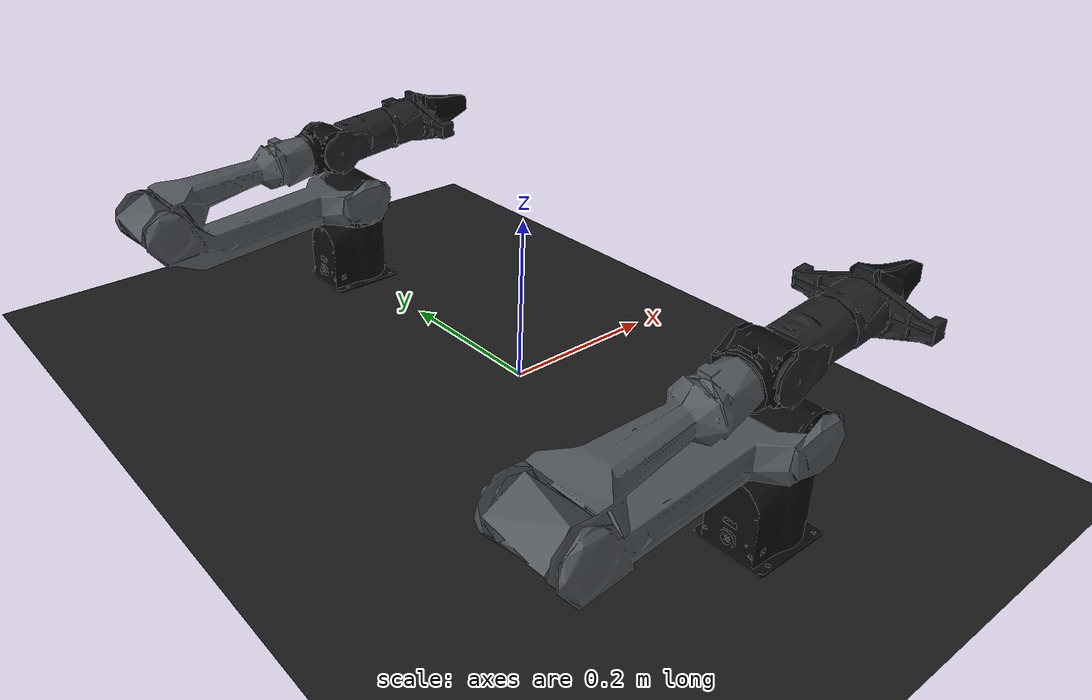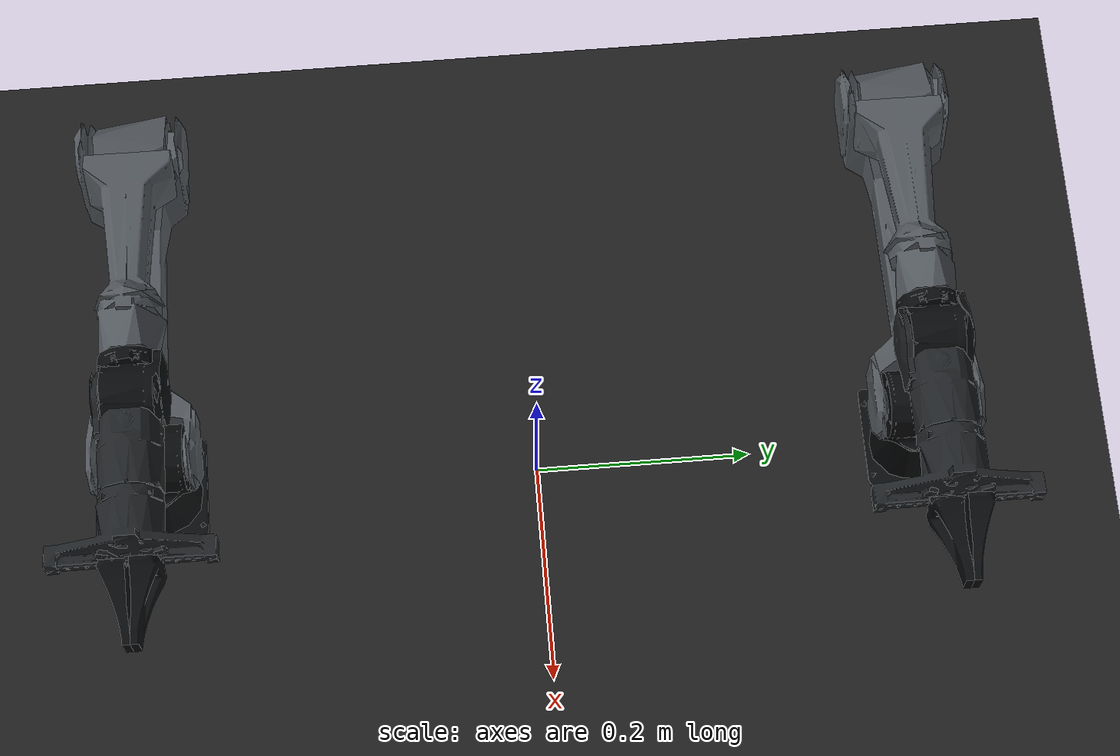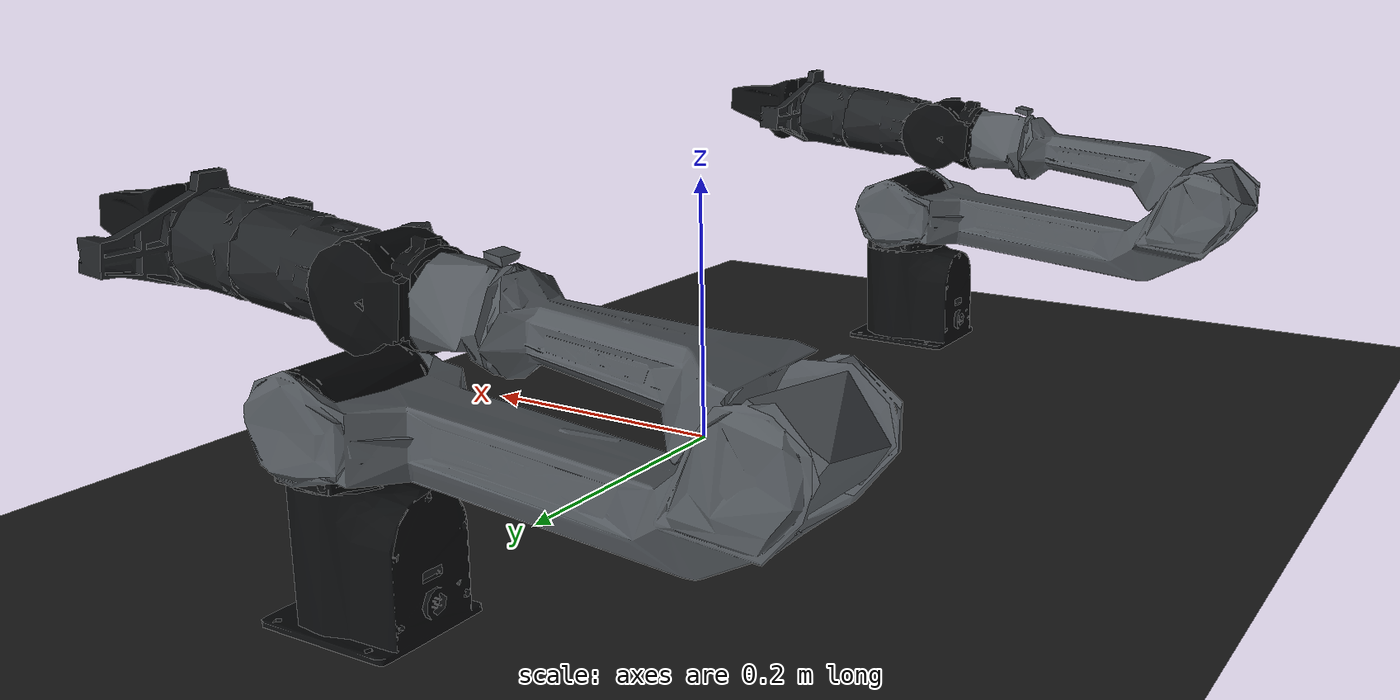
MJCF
<mujoco model="dual_piper_description">
    <compiler angle="radian" />
    <size njmax="1000" nconmax="200" />

    <visual>
        <global offwidth="1920" offheight="1080" />
        <quality shadowsize="4096" />
        <headlight ambient="0.2 0.2 0.2" />
    </visual>

    <asset>
        <texture type="skybox" builtin="gradient" rgb1="0.05 0.05 0.05" rgb2="0.15 0.15 0.18" width="512" height="512"/>
        <texture name="texplane" type="2d" builtin="checker" rgb1="0.1 0.1 0.1" rgb2="0.15 0.15 0.15" width="512" height="512" mark="edge" markrgb="0.3 0.3 0.3"/>
        <material name="matplane" reflectance="0.2" texture="texplane" texrepeat="2 2" texuniform="true"/>
        <material name="piper_black" rgba="0.035 0.040 0.045 1" specular="0.25" shininess="0.20"/>
        <material name="piper_graphite" rgba="0.120 0.130 0.140 1" specular="0.35" shininess="0.25"/>
        <material name="piper_gray" rgba="0.320 0.340 0.360 1" specular="0.40" shininess="0.30"/>
        <material name="piper_silver" rgba="0.580 0.600 0.620 1" specular="0.50" shininess="0.35"/>

        <mesh name="base_link" file="meshes/base_link.STL" />
        <mesh name="link1" file="meshes/link1.STL" />
        <mesh name="link2" file="meshes/link2.STL" />
        <mesh name="link3" file="meshes/link3.STL" />
        <mesh name="link4" file="meshes/link4.STL" />
        <mesh name="link5" file="meshes/link5.STL" />
        <mesh name="link6" file="meshes/link6.STL" />
        <mesh name="gripper_base" file="meshes/gripper_base.STL" />
        <mesh name="link7" file="meshes/link7.STL" />
        <mesh name="link8" file="meshes/link8.STL" />
    </asset>

    <worldbody>
        <light directional="true" diffuse="0.8 0.8 0.8" specular="0.3 0.3 0.3" pos="0 0 5" dir="0 0 -1" castshadow="true"/>
        <light directional="true" diffuse="0.3 0.3 0.4" pos="2 2 4" dir="-2 -2 -4" castshadow="false"/>
        <light directional="true" diffuse="0.3 0.3 0.4" pos="-2 -2 4" dir="2 2 -4" castshadow="false"/>

        <geom name="floor" pos="0 0 0" size="4 4 0.1" type="plane" material="matplane" condim="3"/>

        <body name="base_izquierdo" pos="0 0.35 0">
            <geom type="mesh" material="piper_black" mesh="base_link" />
            <body name="izq_link1" pos="0 0 0.123">
                <inertial pos="0.000121505 0.000104632 -0.00438597" quat="0.486797 0.49897 -0.50059 0.513292" mass="0.215052" diaginertia="0.000116369 0.00010964 9.9555e-05" />
                <joint name="izq_joint1" pos="0 0 0" axis="0 0 1" limited="true" range="-2.618 2.168" damping="300"/>
                <geom type="mesh" material="piper_black" mesh="link1" />
                <body name="izq_link2" pos="0 0 0" quat="0.0356735 -0.0356786 -0.706207 -0.706205">
                    <inertial pos="0.198666 -0.0109269 0.00142122" quat="0.0189031 0.705267 -0.0456298 0.707219" mass="0.463914" diaginertia="0.00104423 0.0010069 0.000207486" />
                    <joint name="izq_joint2" pos="0 0 0" axis="0 0 1" limited="true" range="0 3.14" damping="100"/>
                    <geom type="mesh" material="piper_gray" mesh="link2" />
                    <body name="izq_link3" pos="0.28503 0 0" quat="0.637536 0 0 -0.77042">
                        <inertial pos="-0.0202738 -0.133915 -0.000458683" quat="0.528127 0.491307 -0.505056 0.473938" mass="0.219942" diaginertia="0.000201238 0.000190068 7.08709e-05" />
                        <joint name="izq_joint3" pos="0 0 0" axis="0 0 1" limited="true" range="-2.967 0" damping="20"/>
                        <geom type="mesh" material="piper_gray" mesh="link3" />
                        <body name="izq_link4" pos="-0.021984 -0.25075 0" quat="0.707105 0.707108 0 0">
                            <inertial pos="-9.66636e-05 0.000876064 -0.00496881" quat="0.512749 0.48584 0.481646 0.518714" mass="0.131814" diaginertia="5.1333e-05 4.14831e-05 3.96892e-05" />
                            <joint name="izq_joint4" pos="0 0 0" axis="0 0 1" limited="true" range="-1.745 1.745" damping="5"/>
                            <geom type="mesh" material="piper_black" mesh="link4" />
                            <body name="izq_link5" pos="0 0 0" quat="0.707105 -0.707108 0 0">
                                <inertial pos="-4.10554e-05 -0.0566487 -0.00372058" quat="0.492375 0.506639 0.49332 0.507463" mass="0.134101" diaginertia="5.27778e-05 4.60364e-05 4.10994e-05" />
                                <joint name="izq_joint5" pos="0 0 0" axis="0 0 1" limited="true" range="-1.22 1.22" damping="2"/>
                                <geom type="mesh" material="piper_graphite" mesh="link5" />
                                <body name="izq_link6" pos="8.8259e-05 -0.091 0" quat="0.707105 0.707108 0 0">
                                    <inertial pos="-0.000179422 7.72241e-05 0.0305765" quat="0.498967 0.497649 -0.502223 0.501147" mass="0.152309" diaginertia="0.000119759 0.000110059 4.99704e-05" />
                                    <joint name="izq_joint6" pos="0 0 0" axis="0 0 1" limited="true" range="-2.0944 2.0944" damping="0.1"/>
                                    <geom type="mesh" material="piper_silver" mesh="link6" />
                                    <geom type="mesh" material="piper_graphite" mesh="gripper_base" />
                                    <body name="izq_link7" pos="0 0 0.1358" quat="0.707105 0.707108 0 0">
                                        <inertial pos="0.000651232 -0.049193 0.00972259" quat="0.519774 0.479905 -0.436488 0.555881" mass="0.0303535" diaginertia="1.60353e-05 1.14217e-05 5.97329e-06" />
                                        <joint name="izq_joint7" pos="0 0 0" axis="0 0 1" type="slide" limited="true" range="0 0.035" damping="100"/>
                                        <geom type="mesh" material="piper_black" mesh="link7" />
                                    </body>
                                    <body name="izq_link8" pos="0 0 0.1358" quat="-2.59734e-06 -2.59735e-06 -0.707108 -0.707105">
                                        <inertial pos="0.000651232 -0.049193 0.00972259" quat="0.519774 0.479905 -0.436488 0.555881" mass="0.0303535" diaginertia="1.60353e-05 1.14217e-05 5.97329e-06" />
                                        <joint name="izq_joint8" pos="0 0 0" axis="0 0 -1" type="slide" limited="true" range="-0.035 0" damping="100"/>
                                        <geom type="mesh" material="piper_black" mesh="link8" />
                                    </body>
                                </body>
                            </body>
                        </body>
                    </body>
                </body>
            </body>
        </body>

        <body name="base_derecho" pos="0 -0.35 0">
            <geom type="mesh" material="piper_black" mesh="base_link" />
            <body name="der_link1" pos="0 0 0.123">
                <inertial pos="0.000121505 0.000104632 -0.00438597" quat="0.486797 0.49897 -0.50059 0.513292" mass="0.215052" diaginertia="0.000116369 0.00010964 9.9555e-05" />
                <joint name="der_joint1" pos="0 0 0" axis="0 0 1" limited="true" range="-2.618 2.168" damping="300"/>
                <geom type="mesh" material="piper_black" mesh="link1" />
                <body name="der_link2" pos="0 0 0" quat="0.0356735 -0.0356786 -0.706207 -0.706205">
                    <inertial pos="0.198666 -0.0109269 0.00142122" quat="0.0189031 0.705267 -0.0456298 0.707219" mass="0.463914" diaginertia="0.00104423 0.0010069 0.000207486" />
                    <joint name="der_joint2" pos="0 0 0" axis="0 0 1" limited="true" range="0 3.14" damping="100"/>
                    <geom type="mesh" material="piper_gray" mesh="link2" />
                    <body name="der_link3" pos="0.28503 0 0" quat="0.637536 0 0 -0.77042">
                        <inertial pos="-0.0202738 -0.133915 -0.000458683" quat="0.528127 0.491307 -0.505056 0.473938" mass="0.219942" diaginertia="0.000201238 0.000190068 7.08709e-05" />
                        <joint name="der_joint3" pos="0 0 0" axis="0 0 1" limited="true" range="-2.967 0" damping="20"/>
                        <geom type="mesh" material="piper_gray" mesh="link3" />
                        <body name="der_link4" pos="-0.021984 -0.25075 0" quat="0.707105 0.707108 0 0">
                            <inertial pos="-9.66636e-05 0.000876064 -0.00496881" quat="0.512749 0.48584 0.481646 0.518714" mass="0.131814" diaginertia="5.1333e-05 4.14831e-05 3.96892e-05" />
                            <joint name="der_joint4" pos="0 0 0" axis="0 0 1" limited="true" range="-1.745 1.745" damping="5"/>
                            <geom type="mesh" material="piper_black" mesh="link4" />
                            <body name="der_link5" pos="0 0 0" quat="0.707105 -0.707108 0 0">
                                <inertial pos="-4.10554e-05 -0.0566487 -0.00372058" quat="0.492375 0.506639 0.49332 0.507463" mass="0.134101" diaginertia="5.27778e-05 4.60364e-05 4.10994e-05" />
                                <joint name="der_joint5" pos="0 0 0" axis="0 0 1" limited="true" range="-1.22 1.22" damping="2"/>
                                <geom type="mesh" material="piper_graphite" mesh="link5" />
                                <body name="der_link6" pos="8.8259e-05 -0.091 0" quat="0.707105 0.707108 0 0">
                                    <inertial pos="-0.000179422 7.72241e-05 0.0305765" quat="0.498967 0.497649 -0.502223 0.501147" mass="0.152309" diaginertia="0.000119759 0.000110059 4.99704e-05" />
                                    <joint name="der_joint6" pos="0 0 0" axis="0 0 1" limited="true" range="-2.0944 2.0944" damping="0.1"/>
                                    <geom type="mesh" material="piper_silver" mesh="link6" />
                                    <geom type="mesh" material="piper_graphite" mesh="gripper_base" />
                                    <body name="der_link7" pos="0 0 0.1358" quat="0.707105 0.707108 0 0">
                                        <inertial pos="0.000651232 -0.049193 0.00972259" quat="0.519774 0.479905 -0.436488 0.555881" mass="0.0303535" diaginertia="1.60353e-05 1.14217e-05 5.97329e-06" />
                                        <joint name="der_joint7" pos="0 0 0" axis="0 0 1" type="slide" limited="true" range="0 0.035" damping="100"/>
                                        <geom type="mesh" material="piper_black" mesh="link7" />
                                    </body>
                                    <body name="der_link8" pos="0 0 0.1358" quat="-2.59734e-06 -2.59735e-06 -0.707108 -0.707105">
                                        <inertial pos="0.000651232 -0.049193 0.00972259" quat="0.519774 0.479905 -0.436488 0.555881" mass="0.0303535" diaginertia="1.60353e-05 1.14217e-05 5.97329e-06" />
                                        <joint name="der_joint8" pos="0 0 0" axis="0 0 -1" type="slide" limited="true" range="-0.035 0" damping="100"/>
                                        <geom type="mesh" material="piper_black" mesh="link8" />
                                    </body>
                                </body>
                            </body>
                        </body>
                    </body>
                </body>
            </body>
        </body>
    </worldbody>

    <equality>
        <joint name="izq_gripper_mimic" joint1="izq_joint8" joint2="izq_joint7" polycoef="0 -1 0 0 0"/>
        <joint name="der_gripper_mimic" joint1="der_joint8" joint2="der_joint7" polycoef="0 -1 0 0 0"/>
    </equality>

    <actuator>
        <position name="izq_joint1" ctrllimited="true" ctrlrange="-2.618 2.618" joint="izq_joint1" kp="10000" user="1" forcelimited="true" forcerange="-20000 20000"/>
        <position name="izq_joint2" ctrllimited="true" ctrlrange="0 3.14158" joint="izq_joint2" kp="2000" user="1" forcelimited="true" forcerange="-20000 20000"/>
        <position name="izq_joint3" ctrllimited="true" ctrlrange="-2.697 0" joint="izq_joint3" kp="500" user="1" forcelimited="true" forcerange="-1000 1000"/>
        <position name="izq_joint4" ctrllimited="true" ctrlrange="-1.832 1.832" joint="izq_joint4" kp="50" user="1" forcelimited="true" forcerange="-70 70"/>
        <position name="izq_joint5" ctrllimited="true" ctrlrange="-1.22 1.22" joint="izq_joint5" kp="20" user="1" forcelimited="true" forcerange="-50 50"/>
        <position name="izq_joint6" ctrllimited="true" ctrlrange="-3.14158 3.14158" joint="izq_joint6" kp="5" user="1" forcelimited="true" forcerange="-6 6"/>
        <position name="izq_joint7" ctrllimited="true" ctrlrange="0 0.0475" joint="izq_joint7" kp="10000" user="1" forcelimited="true" forcerange="-100 100"/>

        <position name="der_joint1" ctrllimited="true" ctrlrange="-2.618 2.618" joint="der_joint1" kp="10000" user="1" forcelimited="true" forcerange="-20000 20000"/>
        <position name="der_joint2" ctrllimited="true" ctrlrange="0 3.14158" joint="der_joint2" kp="2000" user="1" forcelimited="true" forcerange="-20000 20000"/>
        <position name="der_joint3" ctrllimited="true" ctrlrange="-2.697 0" joint="der_joint3" kp="500" user="1" forcelimited="true" forcerange="-1000 1000"/>
        <position name="der_joint4" ctrllimited="true" ctrlrange="-1.832 1.832" joint="der_joint4" kp="50" user="1" forcelimited="true" forcerange="-70 70"/>
        <position name="der_joint5" ctrllimited="true" ctrlrange="-1.22 1.22" joint="der_joint5" kp="20" user="1" forcelimited="true" forcerange="-50 50"/>
        <position name="der_joint6" ctrllimited="true" ctrlrange="-3.14158 3.14158" joint="der_joint6" kp="5" user="1" forcelimited="true" forcerange="-6 6"/>
        <position name="der_joint7" ctrllimited="true" ctrlrange="0 0.0475" joint="der_joint7" kp="10000" user="1" forcelimited="true" forcerange="-100 100"/>
    </actuator>
</mujoco>
